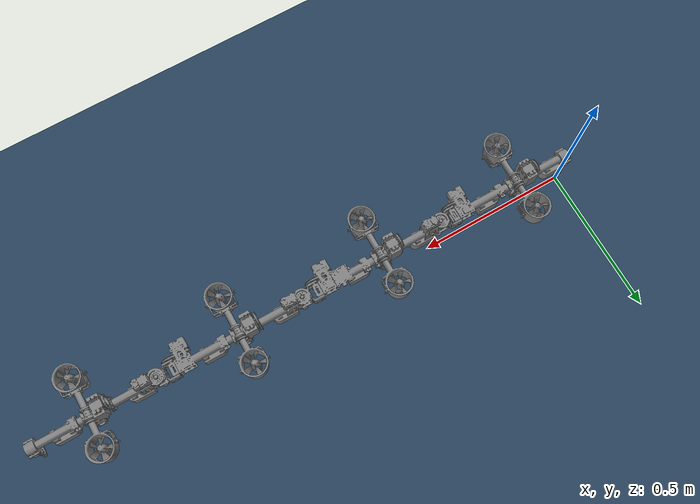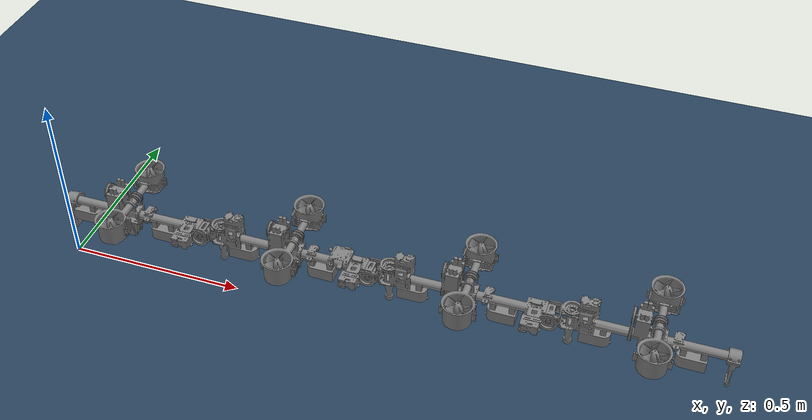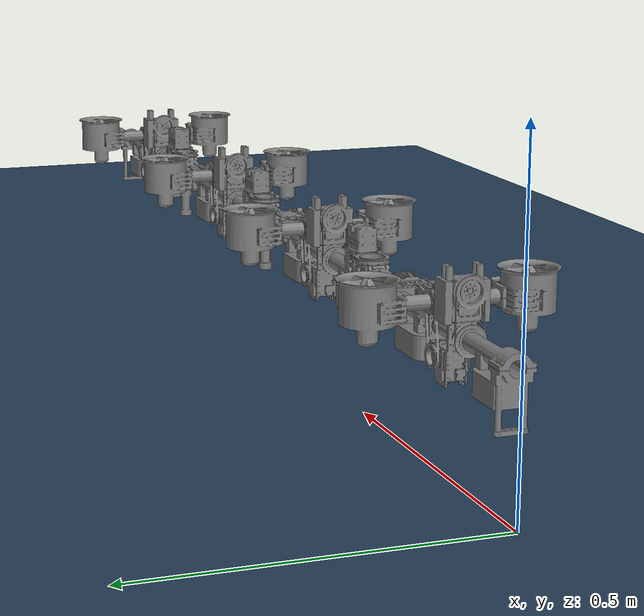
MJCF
<mujoco model="dragon">
  <compiler coordinate="local" convexhull="false" angle="radian" balanceinertia="true" meshdir="mesh"/>
  <option timestep="0.005" gravity="0 0 -9.81" collision="all"/>
  <option density="1" viscosity="1e-3" collision="all"/>
  <option integrator="implicit" />

    <asset>
        <mesh name="ducted_fan_head_link" file="ducted_fan_head_link.stl" />
        <mesh name="ducted_fan_gimbal_roll" file="ducted_fan_gimbal_roll.stl" />
        <mesh name="ducted_fan_gimbal_pitch" file="ducted_fan_gimbal_pitch.stl" />
        <mesh name="inter_joint_junction" file="inter_joint_junction.stl" />
        <mesh name="ducted_fan_baselink" file="ducted_fan_baselink.stl" />
        <mesh name="ducted_fan_general_link" file="ducted_fan_general_link.stl" />
        <mesh name="ducted_fan_end_link" file="ducted_fan_end_link.stl" />

        <texture type="skybox" builtin="gradient" rgb1=".3 .5 .7" rgb2="0 0 0" width="32" height="512"/>
        <texture name="body" type="cube" builtin="flat" mark="cross" width="128" height="128" rgb1="0.8 0.6 0.4" rgb2="0.8 0.6 0.4" markrgb="1 1 1" random="0.01"/>
        <material name="body" texture="body" texuniform="true" rgba="0.8 0.6 .4 1"/>
        <texture name="grid" type="2d" builtin="checker" width="512" height="512" rgb1=".1 .2 .3" rgb2=".2 .3 .4"/>
        <material name="grid" texture="grid" texrepeat="1 1" texuniform="true" reflectance=".2"/>
    </asset>

    <worldbody>
      <geom name="floor" size="0 0 .05" type="plane" material="grid" condim="3"/>
      <light name="spotlight" mode="targetbodycom" target="link2" diffuse=".8 .8 .8" specular="0.3 0.3 0.3" pos="0 -6 4" cutoff="30"/>

      <body name="link1" pos="0 0 0.2" >
        <inertial pos="0.22709 -0.00667 -0.02721" mass="0.7968" fullinertia="0.00095 0.0151 0.0148 -0.00098 0.0003 0.0001" />
        <geom pos="0.212 0 0" type="mesh" contype="1" conaffinity="0" group="1" mesh="ducted_fan_head_link" />
        <joint name="root" type="free" />

        <body name="gimbal1_roll_module" pos="0.212 0 0">
            <inertial pos="-0.0276 0.00042 0.01548"  mass="0.4604" fullinertia="0.0004 0.0004 0.0003 0 -0.0003 0" />
            <joint name="gimbal1_roll" pos="0 0 0" axis="1 0 0" limited="true" range="-3.14 3.14" damping="0.1" />
            <geom pos="-0.01 0 0" type="mesh" contype="1" conaffinity="0" group="1" mesh="ducted_fan_gimbal_roll" />

            <body name="gimbal1_pitch_module" pos="0 0 0.037">
                <inertial pos="0 0.000329988 -0.00870967" mass="0.53012" fullinertia="0.0061 0.0001 0.0061 0.0 0.0 0.0" />
                <joint name="gimbal1_pitch" pos="0 0 0" axis="0 1 0" limited="true" range="-3.14 3.14" damping="0.1" />
                <geom type="mesh" contype="1" conaffinity="0" group="1" mesh="ducted_fan_gimbal_pitch" />

                <body name="thrust1" pos="0 0 0">
                    <inertial pos="0 0 0" mass="0.0001" fullinertia="0.00001 0.00001 0.00002 0.0 0.0 0.0" />
                    <site name="rotor1" pos="0 0 0" />
                </body>
            </body>
        </body>

        <body name="inter_joint1" pos="0.424 0 0">
            <inertial pos="0.02918 -0.00427 -0.00155" mass="0.1329" fullinertia="0.0001 0.0001 0.0001 0.0 0.0 0.0" />
            <joint name="joint1_pitch" pos="0 0 0" axis="0 1 0" limited="true" range="-1.5708 1.5708" damping="150" frictionloss="0.05" />
            <geom pos="0.02575 0 0" type="mesh" contype="1" conaffinity="0" group="1" mesh="inter_joint_junction" />

            <body name="link2" pos="0.0515 0 0">
                <inertial pos="0.221541 -0.00473999 -0.0156795" mass="1.13481" fullinertia="0.0018 0.0228 0.0219 -0.0009 -0.0006 0.0001" />
                <joint name="joint1_yaw" pos="0 0 0" axis="0 0 1" limited="true" range="-1.5708 1.5708" damping="150" frictionloss="0.05" />
                <geom pos="0.212 0 0" type="mesh" contype="1" conaffinity="0" group="1" mesh="ducted_fan_baselink" />
                <site name="fc" pos="0.316 -0.004 0.043" />

                <body name="gimbal2_roll_module" pos="0.212 0 0">
                    <inertial pos="-0.0276 0.00042 0.01548" mass="0.4604" fullinertia="0.0004 0.0004 0.0003 0 -0.0003 0" />
                    <joint name="gimbal2_roll" pos="0 0 0" axis="1 0 0" limited="true" range="-3.14 3.14" damping="0.1" />
                    <geom pos="-0.01 0 0" type="mesh" contype="1" conaffinity="0" group="1" mesh="ducted_fan_gimbal_roll" />

                    <body name="gimbal2_pitch_module" pos="0 0 0.037">
                        <inertial pos="0 0.000329988 -0.00870967" mass="0.53012" fullinertia="0.0061 0.0001 0.0061 0.0 0.0 0.0" />
                        <joint name="gimbal2_pitch" pos="0 0 0" axis="0 1 0" limited="true" range="-3.14 3.14" damping="0.1" />
                        <geom type="mesh" contype="1" conaffinity="0" group="1" mesh="ducted_fan_gimbal_pitch" />

                        <body name="thrust2" pos="0 0 0">
                            <inertial pos="0 0 0" mass="0.0001" fullinertia="0.00001 0.00001 0.00002 0.0 0.0 0.0" />
                            <site name="rotor2" pos="0 0 0" />
                        </body>
                    </body>
                </body>

                <body name="inter_joint2" pos="0.424 0 0">
                    <inertial pos="0.02918 -0.00427 -0.00155" mass="0.1329" fullinertia="0.0001 0.0001 0.0001 0.0 0.0 0.0" />
                    <joint name="joint2_pitch" pos="0 0 0" axis="0 1 0" limited="true" range="-1.5708 1.5708" damping="150" frictionloss="0.05" />
                    <geom pos="0.02575 0 0" type="mesh" contype="1" conaffinity="0" group="1" mesh="inter_joint_junction" />

                    <body name="link3" pos="0.0515 0 0">
                        <inertial pos="0.19922 -0.0058 -0.01695" mass="0.9289" fullinertia="0.0015 0.0198 0.0189 -0.0008 -0.0001 0.0001" />
                        <joint name="joint2_yaw" pos="0 0 0" axis="0 0 1" limited="true" range="-1.5708 1.5708" damping="150" frictionloss="0.05" />
                        <geom pos="0.212 0 0" type="mesh" contype="1" conaffinity="0" group="1" mesh="ducted_fan_general_link" />

                        <body name="gimbal3_roll_module" pos="0.212 0 0">
                            <inertial pos="-0.0276 0.00042 0.01548" mass="0.4604" fullinertia="0.0004 0.0004 0.0003 0 -0.0003 0" />
                            <joint name="gimbal3_roll" pos="0 0 0" axis="1 0 0" limited="true" range="-3.14 3.14" damping="0.1" />
                            <geom pos="-0.01 0 0" type="mesh" contype="1" conaffinity="0" group="1" mesh="ducted_fan_gimbal_roll" />

                            <body name="gimbal3_pitch_module" pos="0 0 0.037">
                                <inertial pos="0 0.000329988 -0.00870967" mass="0.53012" fullinertia="0.0061 0.0001 0.0061 0.0 0.0 0.0" />
                                <joint name="gimbal3_pitch" pos="0 0 0" axis="0 1 0" limited="true" range="-3.14 3.14" damping="0.1" />
                                <geom type="mesh" contype="1" conaffinity="0" group="1" mesh="ducted_fan_gimbal_pitch" />

                                <body name="thrust3" pos="0 0 0">
                                    <inertial pos="0 0 0" mass="0.0001" fullinertia="0.00001 0.00001 0.00002 0.0 0.0 0.0" />
                                    <site name="rotor3" pos="0 0 0" />
                                </body>
                            </body>
                        </body>

                        <body name="inter_joint3" pos="0.424 0 0">
                            <inertial pos="0.02918 -0.00427 -0.00155" mass="0.1329" fullinertia="0.0001 0.0001 0.0001 0.0 0.0 0.0" />
                            <joint name="joint3_pitch" pos="0 0 0" axis="0 1 0" limited="true" range="-1.5708 1.5708" damping="150" frictionloss="0.05" />
                            <geom pos="0.02575 0 0" type="mesh" contype="1" conaffinity="0" group="1" mesh="inter_joint_junction" />

                            <body name="link4" pos="0.0515 0 0">
                                <inertial pos="0.16774 -0.00011 -0.02072" mass="0.7943" fullinertia="0.0012 0.0145 0.0134 0.0 0.0003 0.0" />
                                <joint name="joint3_yaw" pos="0 0 0" axis="0 0 1" limited="true" range="-1.5708 1.5708" damping="150" frictionloss="0.05" />
                                <geom pos="0.212 0 0" type="mesh" contype="1" conaffinity="0" group="1" mesh="ducted_fan_end_link" />

                                <body name="gimbal4_roll_module" pos="0.212 0 0">
                                    <inertial pos="-0.0276 0.00042 0.01548" mass="0.4604" fullinertia="0.0004 0.0004 0.0003 0 -0.0003 0" />
                                    <joint name="gimbal4_roll" pos="0 0 0" axis="1 0 0" limited="true" range="-3.14 3.14" damping="0.1" />
                                    <geom pos="-0.01 0 0" type="mesh" contype="1" conaffinity="0" group="1" mesh="ducted_fan_gimbal_roll" />

                                    <body name="gimbal4_pitch_module" pos="0 0 0.037">
                                        <inertial pos="0 0.000329988 -0.00870967" mass="0.53012" fullinertia="0.0061 0.0001 0.0061 0.0 0.0 0.0" />
                                        <joint name="gimbal4_pitch" pos="0 0 0" axis="0 1 0" limited="true" range="-3.14 3.14" damping="0.1" />
                                        <geom type="mesh" contype="1" conaffinity="0" group="1" mesh="ducted_fan_gimbal_pitch" />

                                        <body name="thrust4" pos="0 0 0">
                                            <inertial pos="0 0 0"  mass="0.0001" fullinertia="0.00001 0.00001 0.00002 0.0 0.0 0.0" />
                                            <site name="rotor4" pos="0 0 0" />
                                        </body>
                                    </body>
                                </body>
                            </body>
                        </body>
                      </body>
                    </body>
                  </body>
                </body>
              </body>
      </worldbody>

      <actuator>
        <position name="joint1_pitch" kp="40" joint="joint1_pitch" />
        <position name="joint1_yaw"   kp="40" joint="joint1_yaw" />
        <position name="joint2_pitch" kp="40" joint="joint2_pitch" />
        <position name="joint2_yaw"   kp="40" joint="joint2_yaw" />
        <position name="joint3_pitch" kp="40" joint="joint3_pitch" />
        <position name="joint3_yaw"   kp="40" joint="joint3_yaw" />

        <position name="gimbal1_pitch" kp="40" joint="gimbal1_pitch" />
        <position name="gimbal1_roll"  kp="40" joint="gimbal1_roll" />
        <position name="gimbal2_pitch" kp="40" joint="gimbal2_pitch" />
        <position name="gimbal2_roll"  kp="40" joint="gimbal2_roll" />
        <position name="gimbal3_pitch" kp="40" joint="gimbal3_pitch" />
        <position name="gimbal3_roll"  kp="40" joint="gimbal3_roll" />
        <position name="gimbal4_pitch" kp="40" joint="gimbal4_pitch" />
        <position name="gimbal4_roll"  kp="40" joint="gimbal4_roll" />

        <motor name="rotor1" ctrllimited="true" ctrlrange="0.0 30.0" gear="0 0 1 0 0 -0.02" site="rotor1" />
        <motor name="rotor2" ctrllimited="true" ctrlrange="0.0 30.0" gear="0 0 1 0 0 0.02" site="rotor2" />
        <motor name="rotor3" ctrllimited="true" ctrlrange="0.0 30.0" gear="0 0 1 0 0 -0.02" site="rotor3" />
        <motor name="rotor4" ctrllimited="true" ctrlrange="0.0 30.0" gear="0 0 1 0 0 0.02" site="rotor4" />
      </actuator>

      <sensor>
        <accelerometer name="acc" site="fc" />
        <gyro name="gyro" site="fc" />
        <magnetometer name="mag" site="fc" />
      </sensor>
</mujoco>
